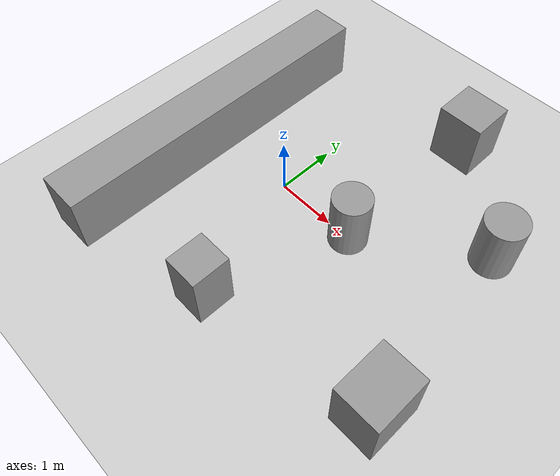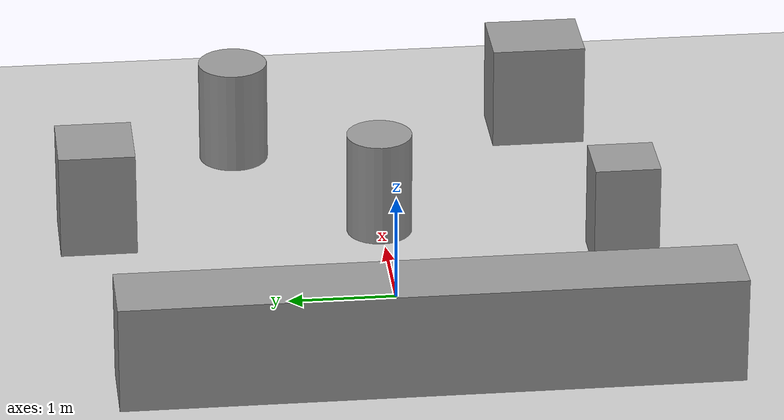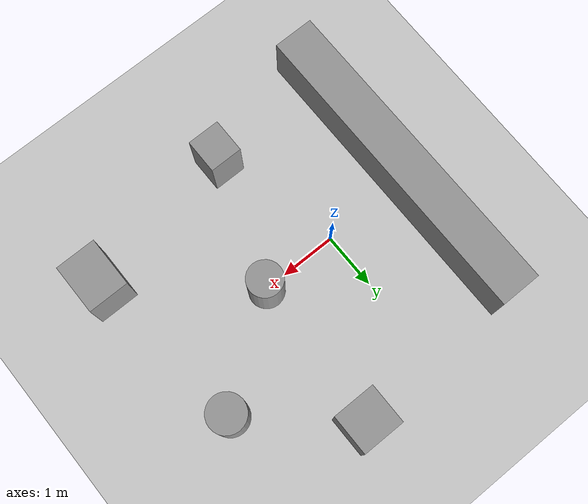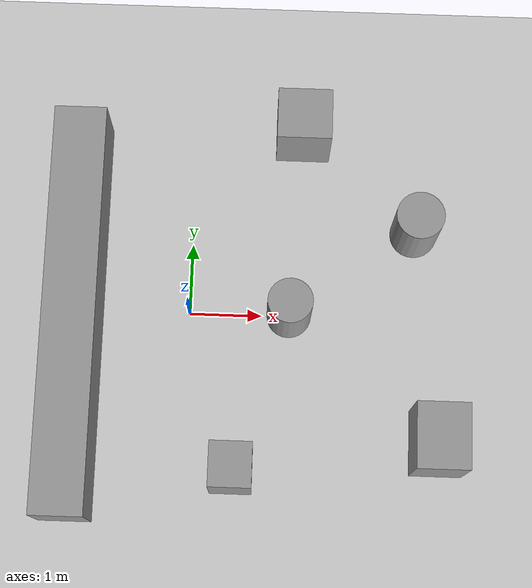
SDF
<sdf version="1.6">
 <world name="default">
  <light name="sun" type="directional">
   <pose>0 0 10 0 -0 0</pose>
   <diffuse>0.8 0.8 0.8 1</diffuse>
   <specular>0.2 0.2 0.2 1</specular>
   <attenuation>
    <range>1000</range>
    <constant>0.9</constant>
    <linear>0.01</linear>
    <quadratic>0.001</quadratic>
   </attenuation>
   <direction>-0.5 0.1 -0.9</direction>
  </light>
  <model name="ground_plane">
   <static>1</static>
   <link name="link">
    <collision name="collision">
     <geometry><plane><normal>0 0 1</normal><size>100 100</size></plane></geometry>
     <surface><friction><ode><mu>100</mu><mu2>50</mu2></ode></friction></surface>
    </collision>
    <visual name="visual">
     <cast_shadows>0</cast_shadows>
     <geometry><plane><normal>0 0 1</normal><size>100 100</size></plane></geometry>
     <material>
      <script><uri>file://media/materials/scripts/gazebo.material</uri><name>Gazebo/Grey</name></script>
     </material>
    </visual>
   </link>
  </model>
  <gravity>0 0 -9.8</gravity>
  <magnetic_field>6e-06 2.3e-05 -4.2e-05</magnetic_field>
  <atmosphere type="adiabatic"/>
  <physics name="default_physics" default="0" type="ode">
   <max_step_size>0.001</max_step_size>
   <real_time_factor>1</real_time_factor>
   <real_time_update_rate>1000</real_time_update_rate>
  </physics>
  <scene><ambient>0.4 0.4 0.4 1</ambient><background>0.7 0.7 0.7 1</background><shadows>1</shadows></scene>
  <spherical_coordinates>
   <surface_model>EARTH_WGS84</surface_model>
   <latitude_deg>0</latitude_deg>
   <longitude_deg>0</longitude_deg>
   <elevation>0</elevation>
   <heading_deg>0</heading_deg>
  </spherical_coordinates>
  <model name="unit_box" type="fixed">
   <pose>-1.58757 -0.138749 0.496422 0.001276 -3e-06 0.002224</pose>
   <link name="link">
    <inertial>
     <mass>10000</mass>
     <inertia>
      <ixx>0.166667</ixx>
      <ixy>0</ixy>
      <ixz>0</ixz>
      <iyy>0.166667</iyy>
      <iyz>0</iyz>
      <izz>0.166667</izz>
     </inertia>
    </inertial>
    <collision name="collision"><geometry><box><size>0.722902 5.61316 1</size></box></geometry></collision>
    <visual name="visual">
     <geometry><box><size>0.722902 5.61316 1</size></box></geometry>
     <material>
      <script><name>Gazebo/Grey</name><uri>file://media/materials/scripts/gazebo.material</uri></script>
     </material>
    </visual>
   </link>
  </model>
  <model name="unit_box_0" type="fixed">
   <pose>1.5132 2.67903 0.5 0 -0 0.000246</pose>
   <link name="link">
    <inertial>
     <mass>10000</mass>
     <inertia>
      <ixx>0.166667</ixx>
      <ixy>0</ixy>
      <ixz>0</ixz>
      <iyy>0.166667</iyy>
      <iyz>0</iyz>
      <izz>0.166667</izz>
     </inertia>
    </inertial>
    <collision name="collision"><geometry><box><size>0.754708 0.717616 1</size></box></geometry></collision>
    <visual name="visual">
     <geometry><box><size>0.754708 0.717616 1</size></box></geometry>
     <material>
      <script><name>Gazebo/Grey</name><uri>file://media/materials/scripts/gazebo.material</uri></script>
     </material>
    </visual>
   </link>
  </model>
  <model name="unit_cylinder" type="fixed">
   <pose>1.38308 0.01584 0.499998 -0 -0 -0</pose>
   <link name="link">
    <inertial>
     <mass>10000</mass>
     <inertia><ixx>0.145833</ixx><ixy>0</ixy><ixz>0</ixz><iyy>0.145833</iyy><iyz>0</iyz><izz>0.125</izz></inertia>
    </inertial>
    <collision name="collision">
     <geometry><cylinder><radius>0.309132</radius><length>1</length></cylinder></geometry>
    </collision>
    <visual name="visual">
     <geometry><cylinder><radius>0.309132</radius><length>1</length></cylinder></geometry>
     <material>
      <script><name>Gazebo/Grey</name><uri>file://media/materials/scripts/gazebo.material</uri></script>
     </material>
    </visual>
   </link>
  </model>
  <model name="unit_cylinder_0" type="fixed">
   <pose>3.12133 1.26185 0.499998 0 -0 0</pose>
   <link name="link">
    <inertial>
     <mass>10000</mass>
     <inertia><ixx>0.145833</ixx><ixy>0</ixy><ixz>0</ixz><iyy>0.145833</iyy><iyz>0</iyz><izz>0.125</izz></inertia>
    </inertial>
    <collision name="collision">
     <geometry><cylinder><radius>0.330759</radius><length>1</length></cylinder></geometry>
    </collision>
    <visual name="visual">
     <geometry><cylinder><radius>0.330759</radius><length>1</length></cylinder></geometry>
     <material>
      <script><name>Gazebo/Grey</name><uri>file://media/materials/scripts/gazebo.material</uri></script>
     </material>
    </visual>
   </link>
  </model>
  <model name="unit_box_1" type="fixed">
   <pose>0.652975 -2.19663 0.5 0 -0 0</pose>
   <link name="link">
    <inertial>
     <mass>10000</mass>
     <inertia>
      <ixx>0.166667</ixx>
      <ixy>0</ixy>
      <ixz>0</ixz>
      <iyy>0.166667</iyy>
      <iyz>0</iyz>
      <izz>0.166667</izz>
     </inertia>
    </inertial>
    <collision name="collision"><geometry><box><size>0.575533 0.610839 1</size></box></geometry></collision>
    <visual name="visual">
     <geometry><box><size>0.575533 0.610839 1</size></box></geometry>
     <material>
      <script><name>Gazebo/Grey</name><uri>file://media/materials/scripts/gazebo.material</uri></script>
     </material>
    </visual>
   </link>
  </model>
  <model name="unit_box_2" type="fixed">
   <pose>3.44496 -1.72294 0.5 0 -0 6.4e-05</pose>
   <link name="link">
    <inertial>
     <mass>10000</mass>
     <inertia>
      <ixx>0.166667</ixx>
      <ixy>0</ixy>
      <ixz>0</ixz>
      <iyy>0.166667</iyy>
      <iyz>0</iyz>
      <izz>0.166667</izz>
     </inertia>
    </inertial>
    <collision name="collision"><geometry><box><size>0.715363 0.892769 1</size></box></geometry></collision>
    <visual name="visual">
     <geometry><box><size>0.715363 0.892769 1</size></box></geometry>
     <material>
      <script><name>Gazebo/Grey</name><uri>file://media/materials/scripts/gazebo.material</uri></script>
     </material>
    </visual>
   </link>
  </model>
 </world>
</sdf>
